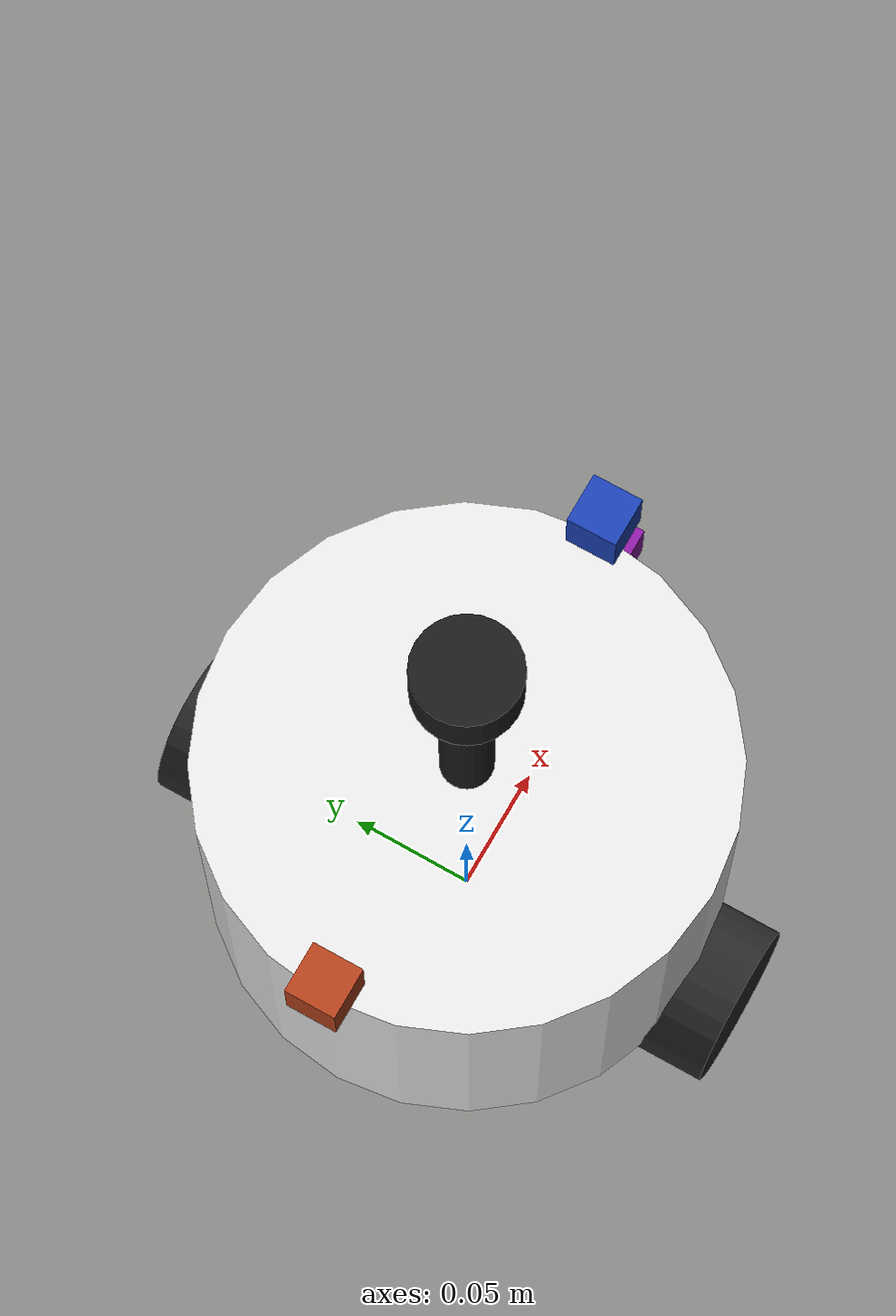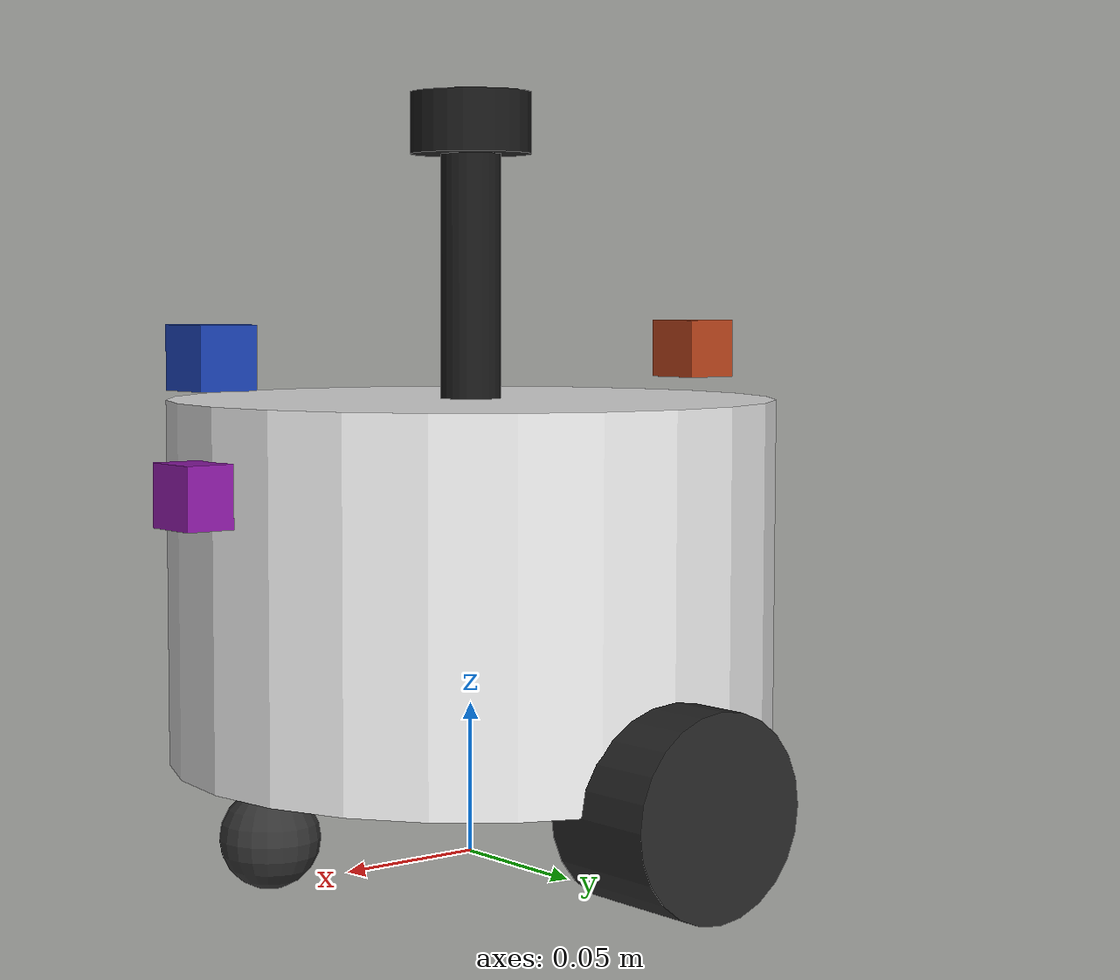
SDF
<?xml version="1.0"?>
<sdf version="1.7">
  <model name="fishbot">
    <static>false</static>

    <!-- ═══ 车体 (含所有固定传感器) ═══ -->
    <link name="base_link">
      <inertial>
        <pose>0.007143 0 0.106829 0 0 0</pose>
        <mass>1.4</mass>
        <inertia>
          <ixx>0.00737458</ixx>
          <ixy>0</ixy>
          <ixz>-0.000600714</ixz>
          <iyy>0.00894315</iyy>
          <iyz>0</iyz>
          <izz>0.00661131</izz>
        </inertia>
      </inertial>

      <collision name="base_collision">
        <pose>0 0 0.0919 0 0 0</pose>
        <geometry><cylinder><length>0.12</length><radius>0.1</radius></cylinder></geometry>
      </collision>
      <visual name="base_visual">
        <pose>0 0 0.0919 0 0 0</pose>
        <geometry><cylinder><length>0.12</length><radius>0.1</radius></cylinder></geometry>
        <material><ambient>0.9 0.9 0.9 1</ambient><diffuse>0.9 0.9 0.9 1</diffuse></material>
      </visual>

      <!-- 前后万向轮 (无摩擦球, 只起支撑) -->
      <collision name="front_caster_collision">
        <pose>0.08 0 0.0159 0 0 0</pose>
        <geometry><sphere><radius>0.016</radius></sphere></geometry>
        <surface>
          <contact><ode><kp>1e+09</kp><kd>1</kd></ode></contact>
          <friction><ode><mu>0</mu><mu2>0</mu2></ode></friction>
        </surface>
      </collision>
      <visual name="front_caster_visual">
        <pose>0.08 0 0.0159 0 0 0</pose>
        <geometry><sphere><radius>0.016</radius></sphere></geometry>
        <material><ambient>0.2 0.2 0.2 1</ambient><diffuse>0.2 0.2 0.2 1</diffuse></material>
      </visual>
      <collision name="back_caster_collision">
        <pose>-0.08 0 0.0159 0 0 0</pose>
        <geometry><sphere><radius>0.016</radius></sphere></geometry>
        <surface>
          <contact><ode><kp>1e+09</kp><kd>1</kd></ode></contact>
          <friction><ode><mu>0</mu><mu2>0</mu2></ode></friction>
        </surface>
      </collision>
      <visual name="back_caster_visual">
        <pose>-0.08 0 0.0159 0 0 0</pose>
        <geometry><sphere><radius>0.016</radius></sphere></geometry>
        <material><ambient>0.2 0.2 0.2 1</ambient><diffuse>0.2 0.2 0.2 1</diffuse></material>
      </visual>

      <!-- 雷达支撑杆 + 雷达外壳 (纯装饰, 位置对应 livox_frame) -->
      <visual name="lidar_mast_visual">
        <pose>0 0 0.1919 0 0 0</pose>
        <geometry><cylinder><length>0.1</length><radius>0.01</radius></cylinder></geometry>
        <material><ambient>0.1 0.1 0.1 1</ambient><diffuse>0.1 0.1 0.1 1</diffuse></material>
      </visual>
      <visual name="lidar_head_visual">
        <pose>0 0 0.2419 0 0 0</pose>
        <geometry><cylinder><length>0.02</length><radius>0.02</radius></cylinder></geometry>
        <material><ambient>0.1 0.1 0.1 1</ambient><diffuse>0.1 0.1 0.1 1</diffuse></material>
      </visual>

      <visual name="camera_front_visual">
        <pose>0.1 0 0.1669 0 0 0</pose>
        <geometry><box><size>0.02 0.02 0.02</size></box></geometry>
        <material><ambient>0.1 0.25 0.7 1</ambient><diffuse>0.1 0.25 0.7 1</diffuse></material>
      </visual>
      <visual name="camera_rear_visual">
        <pose>-0.1 0 0.1669 0 0 0</pose>
        <geometry><box><size>0.02 0.02 0.02</size></box></geometry>
        <material><ambient>0.7 0.25 0.1 1</ambient><diffuse>0.7 0.25 0.1 1</diffuse></material>
      </visual>
      <visual name="camera_depth_visual">
        <pose>0.105 0 0.125 0 0 0</pose>
        <geometry><box><size>0.02 0.02 0.02</size></box></geometry>
        <material><ambient>0.55 0.1 0.65 1</ambient><diffuse>0.55 0.1 0.65 1</diffuse></material>
      </visual>
      <visual name="imu_visual">
        <pose>0 0 0.1119 0 0 0</pose>
        <geometry><box><size>0.02 0.02 0.02</size></box></geometry>
        <material><ambient>0.1 0.6 0.2 1</ambient><diffuse>0.1 0.6 0.2 1</diffuse></material>
      </visual>

      <!-- ─── 雷达: 16 线 ray → PointCloud2 ───
           参数照搬 sensor_rig: 水平 360 / 垂直 16 / ±0.26 rad / 0.05~15.0m
           桥接节点 pointcloud2_to_livox_custom 的 elev ±14.9° = 0.26 rad 与此对应 -->
      <sensor name="livox" type="ray">
        <pose>0 0 0.2419 0 0 0</pose>
        <always_on>1</always_on>
        <visualize>0</visualize>
        <update_rate>10</update_rate>
        <ray>
          <scan>
            <horizontal>
              <samples>360</samples>
              <resolution>1</resolution>
              <min_angle>-3.1416</min_angle>
              <max_angle>3.1416</max_angle>
            </horizontal>
            <vertical>
              <samples>16</samples>
              <resolution>1</resolution>
              <min_angle>-0.26</min_angle>
              <max_angle>0.26</max_angle>
            </vertical>
          </scan>
          <range>
            <min>0.05</min>
            <max>15.0</max>
            <resolution>0.01</resolution>
          </range>
        </ray>
        <plugin name="gazebo_ros_ray_sensor" filename="libgazebo_ros_ray_sensor.so">
          <ros>
            <namespace>/</namespace>
            <remapping>~/out:=/livox/lidar/pointcloud</remapping>
          </ros>
          <output_type>sensor_msgs/PointCloud2</output_type>
          <frame_name>livox_frame</frame_name>
        </plugin>
      </sensor>

      <!-- ─── IMU → /imu/data ─── -->
      <sensor name="imu_s" type="imu">
        <pose>0 0 0.1119 0 0 0</pose>
        <always_on>1</always_on>
        <update_rate>100</update_rate>
        <plugin name="gazebo_ros_imu" filename="libgazebo_ros_imu_sensor.so">
          <ros>
            <namespace>/</namespace>
            <remapping>~/out:=/imu/data</remapping>
          </ros>
          <initial_orientation_as_reference>false</initial_orientation_as_reference>
          <frame_name>imu_link</frame_name>
        </plugin>
      </sensor>

      <!-- ─── 前相机 → /camera_front/image_raw ─── -->
      <sensor name="cam_front_s" type="camera">
        <pose>0.1 0 0.1669 0 0 0</pose>
        <always_on>1</always_on>
        <update_rate>30</update_rate>
        <camera>
          <horizontal_fov>1.1</horizontal_fov>
          <image><width>640</width><height>384</height><format>R8G8B8</format></image>
          <clip><near>0.05</near><far>30.0</far></clip>
        </camera>
        <plugin name="gazebo_ros_camera_cam_front" filename="libgazebo_ros_camera.so">
          <ros>
            <namespace>/</namespace>
            <remapping>~/image_raw:=/camera_front/image_raw</remapping>
          </ros>
          <camera_name>camera_front</camera_name>
          <frame_name>camera_front_frame</frame_name>
        </plugin>
      </sensor>

      <sensor name="cam_depth_s" type="depth">
        <pose>0.105 0 0.125 0 0 0</pose>
        <always_on>1</always_on>
        <update_rate>30</update_rate>
        <camera>
          <horizontal_fov>1.5</horizontal_fov>
          <image><width>640</width><height>384</height><format>R8G8B8</format></image>
          <clip><near>0.05</near><far>10.0</far></clip>
        </camera>
        <plugin name="gazebo_ros_camera_cam_depth" filename="libgazebo_ros_camera.so">
          <ros><namespace>/</namespace></ros>
          <camera_name>camera_depth</camera_name>
          <frame_name>camera_depth_frame</frame_name>
        </plugin>
      </sensor>

      <!-- ─── 后相机 (车尾, 绕 z 转 180°) → /camera_rear/image_raw ─── -->
      <sensor name="cam_rear_s" type="camera">
        <pose>-0.1 0 0.1669 0 0 3.1416</pose>
        <always_on>1</always_on>
        <update_rate>30</update_rate>
        <camera>
          <horizontal_fov>1.1</horizontal_fov>
          <image><width>640</width><height>384</height><format>R8G8B8</format></image>
          <clip><near>0.05</near><far>30.0</far></clip>
        </camera>
        <plugin name="gazebo_ros_camera_cam_rear" filename="libgazebo_ros_camera.so">
          <ros>
            <namespace>/</namespace>
            <remapping>~/image_raw:=/camera_rear/image_raw</remapping>
          </ros>
          <camera_name>camera_rear</camera_name>
          <frame_name>camera_rear_frame</frame_name>
        </plugin>
      </sensor>
    </link>

    <!-- ═══ 驱动轮 ═══ -->
    <link name="left_wheel_link">
      <!-- ⚠ 必须显式声明相对关节的 pose: 缺了它 link 会落回模型原点,
           轮子位置塌进车体, 物理直接崩 (车会自己漂+歪 18°) -->
      <pose relative_to="left_wheel_joint">0 0 0 0 0 0</pose>
      <inertial>
        <pose>0 0 0 0 0 0</pose>
        <mass>0.05</mass>
        <inertia>
          <ixx>1.94667e-05</ixx>
          <ixy>0</ixy><ixz>0</ixz>
          <iyy>1.94667e-05</iyy>
          <iyz>0</iyz>
          <izz>2.56e-05</izz>
        </inertia>
      </inertial>
      <collision name="left_wheel_collision">
        <pose>0 0 0 1.57079 0 0</pose>
        <geometry><cylinder><length>0.04</length><radius>0.032</radius></cylinder></geometry>
        <surface>
          <contact><ode><kp>1e+09</kp><kd>1</kd></ode></contact>
          <friction><ode><mu>20</mu><mu2>20</mu2></ode></friction>
        </surface>
      </collision>
      <visual name="left_wheel_visual">
        <pose>0 0 0 1.57079 0 0</pose>
        <geometry><cylinder><length>0.04</length><radius>0.032</radius></cylinder></geometry>
        <material><ambient>0.15 0.15 0.15 1</ambient><diffuse>0.15 0.15 0.15 1</diffuse></material>
      </visual>
    </link>

    <link name="right_wheel_link">
      <pose relative_to="right_wheel_joint">0 0 0 0 0 0</pose>
      <inertial>
        <pose>0 0 0 0 0 0</pose>
        <mass>0.05</mass>
        <inertia>
          <ixx>1.94667e-05</ixx>
          <ixy>0</ixy><ixz>0</ixz>
          <iyy>1.94667e-05</iyy>
          <iyz>0</iyz>
          <izz>2.56e-05</izz>
        </inertia>
      </inertial>
      <collision name="right_wheel_collision">
        <pose>0 0 0 1.57079 0 0</pose>
        <geometry><cylinder><length>0.04</length><radius>0.032</radius></cylinder></geometry>
        <surface>
          <contact><ode><kp>1e+09</kp><kd>1</kd></ode></contact>
          <friction><ode><mu>20</mu><mu2>20</mu2></ode></friction>
        </surface>
      </collision>
      <visual name="right_wheel_visual">
        <pose>0 0 0 1.57079 0 0</pose>
        <geometry><cylinder><length>0.04</length><radius>0.032</radius></cylinder></geometry>
        <material><ambient>0.15 0.15 0.15 1</ambient><diffuse>0.15 0.15 0.15 1</diffuse></material>
      </visual>
    </link>

    <joint name="left_wheel_joint" type="revolute">
      <pose relative_to="base_link">0 0.1 0.0319 0 0 0</pose>
      <parent>base_link</parent>
      <child>left_wheel_link</child>
      <axis>
        <xyz>0 1 0</xyz>
        <limit><lower>-1e+16</lower><upper>1e+16</upper></limit>
        <dynamics><spring_reference>0</spring_reference><spring_stiffness>0</spring_stiffness></dynamics>
      </axis>
    </joint>

    <joint name="right_wheel_joint" type="revolute">
      <pose relative_to="base_link">0 -0.1 0.0319 0 0 0</pose>
      <parent>base_link</parent>
      <child>right_wheel_link</child>
      <axis>
        <xyz>0 1 0</xyz>
        <limit><lower>-1e+16</lower><upper>1e+16</upper></limit>
        <dynamics><spring_reference>0</spring_reference><spring_stiffness>0</spring_stiffness></dynamics>
      </axis>
    </joint>

    <!-- ═══ 差速驱动 ═══
         话题与 sensor_rig 时代的 planar_move 保持一致: /cmd_vel 进, /odom 出。
         robot_base_frame=base_link 与 fusion_params.yaml 的 robot_base_frame 对齐。 -->
    <plugin name="diff_drive" filename="libgazebo_ros_diff_drive.so">
      <ros>
        <namespace>/</namespace>
        <remapping>cmd_vel:=cmd_vel</remapping>
        <remapping>odom:=odom</remapping>
      </ros>
      <update_rate>30</update_rate>
      <left_joint>left_wheel_joint</left_joint>
      <right_joint>right_wheel_joint</right_joint>
      <wheel_separation>0.2</wheel_separation>
      <wheel_diameter>0.064</wheel_diameter>
      <max_wheel_torque>20</max_wheel_torque>
      <max_wheel_acceleration>1.0</max_wheel_acceleration>
      <publish_odom>true</publish_odom>
      <publish_odom_tf>true</publish_odom_tf>
      <publish_wheel_tf>true</publish_wheel_tf>
      <odometry_frame>odom</odometry_frame>
      <robot_base_frame>base_link</robot_base_frame>
    </plugin>
  </model>
</sdf>
